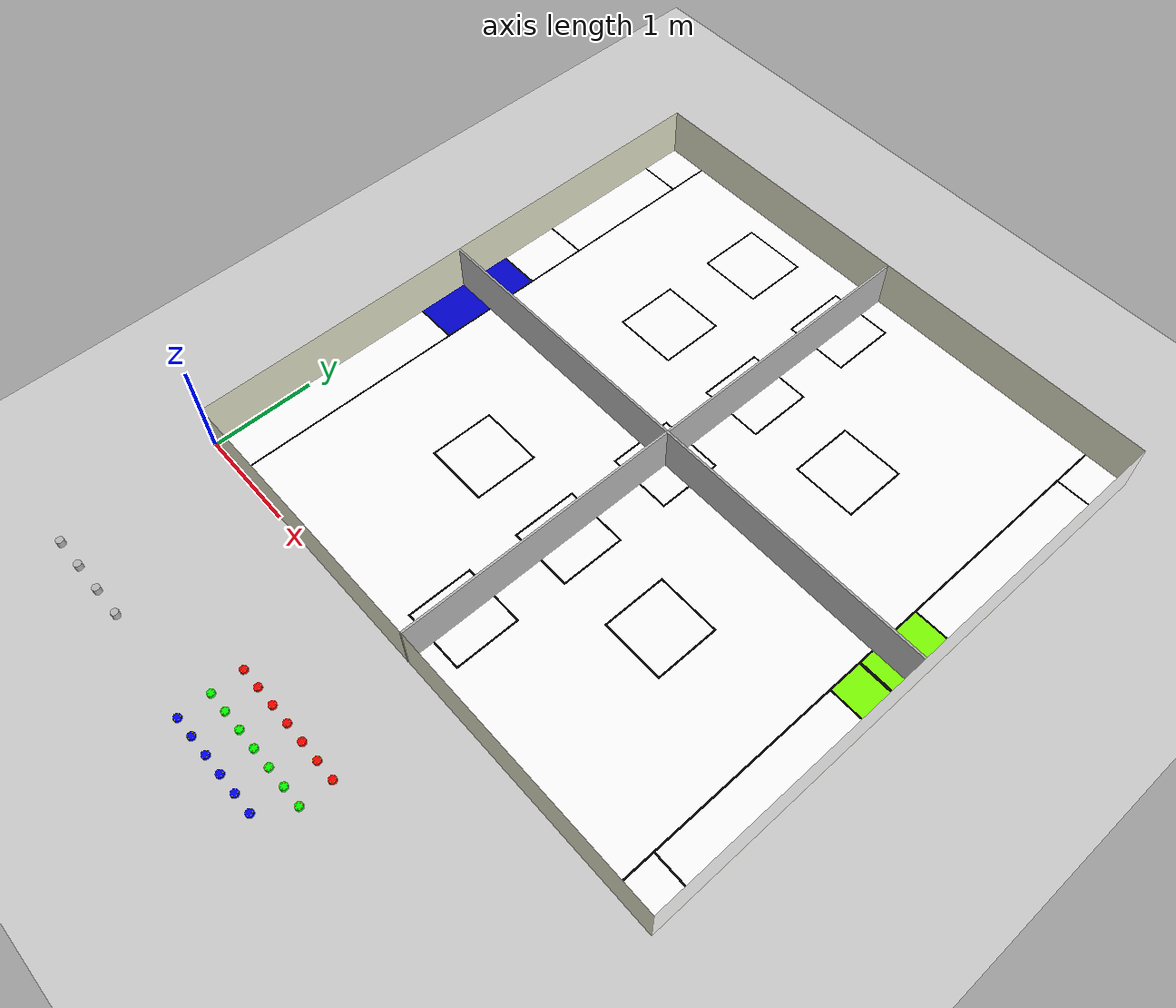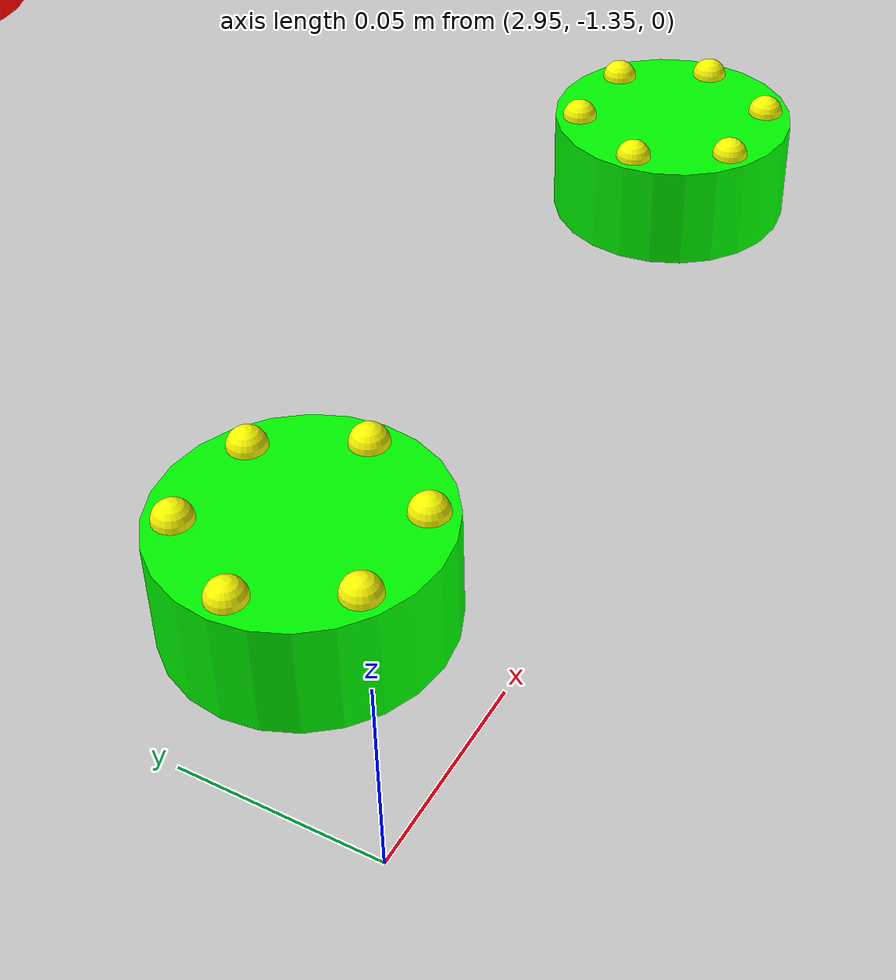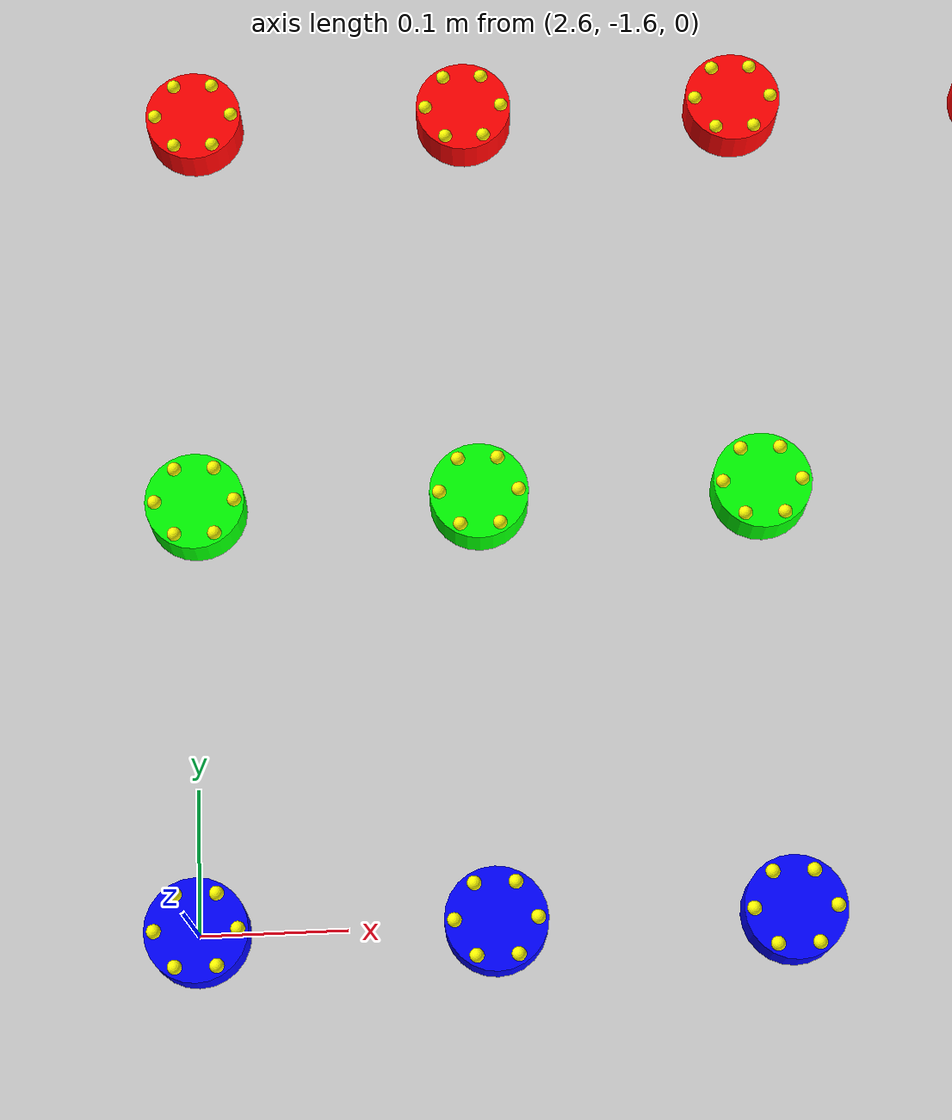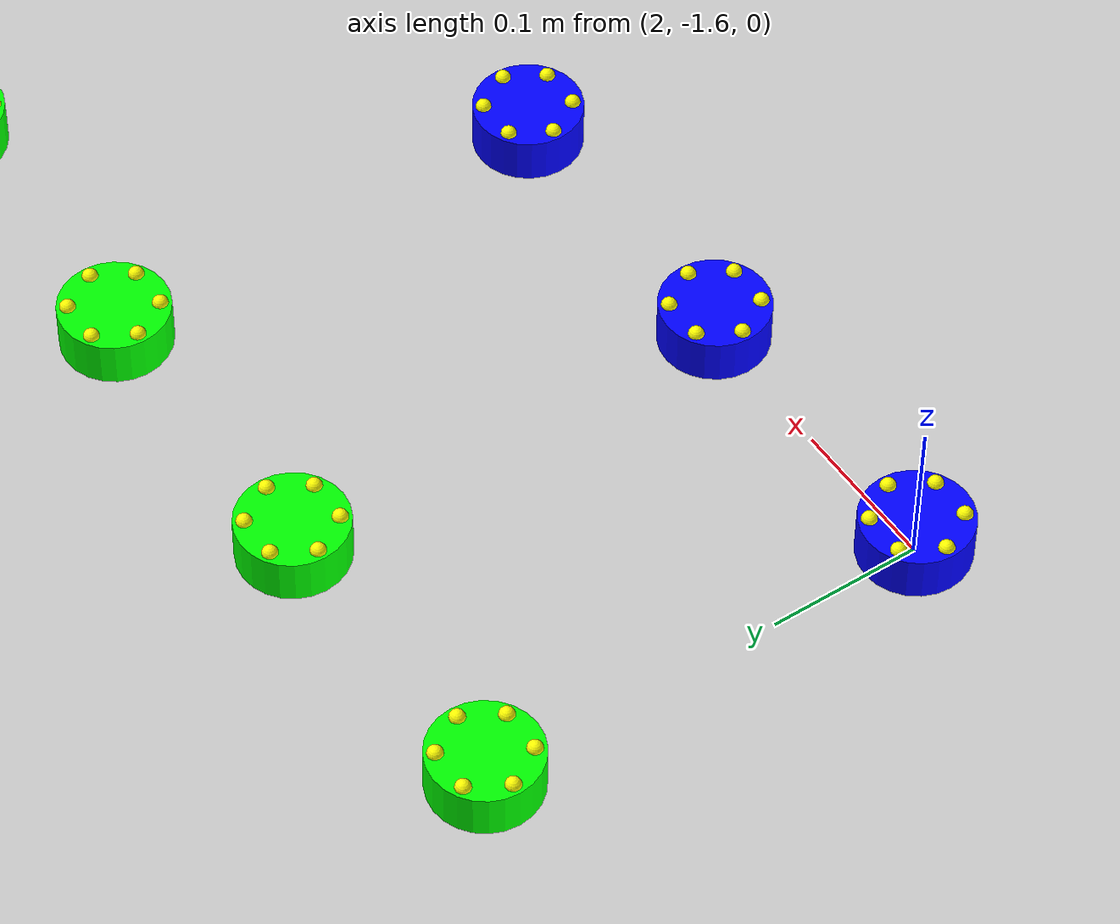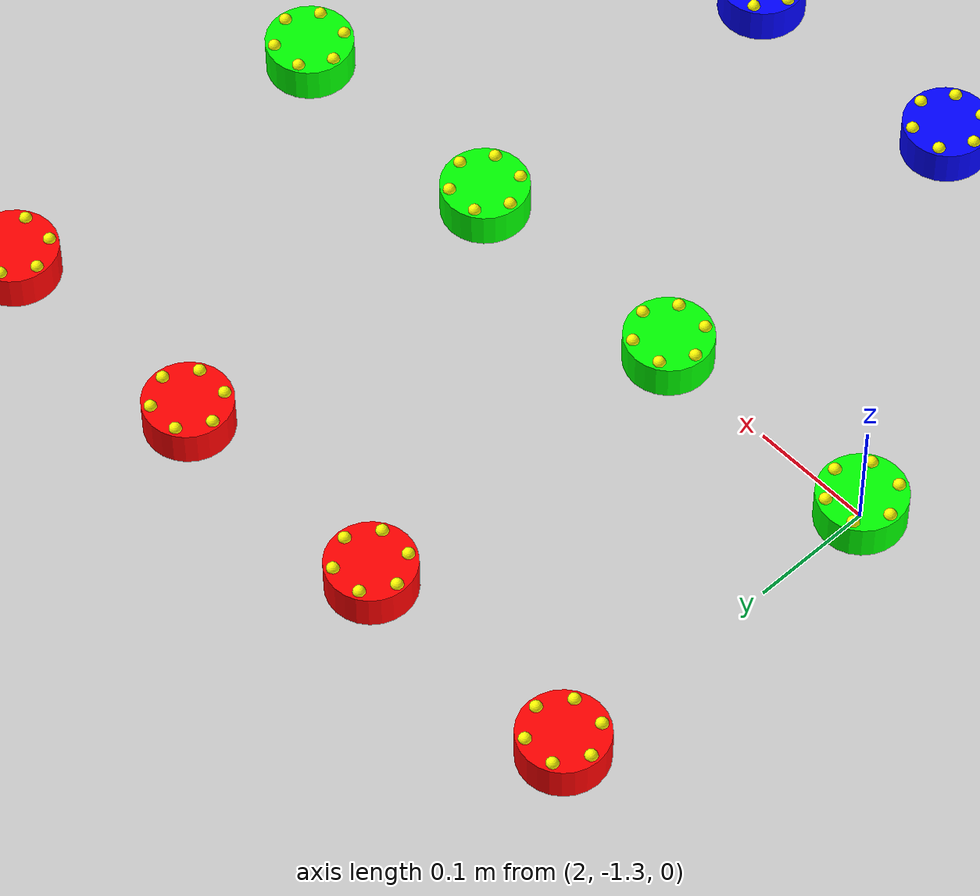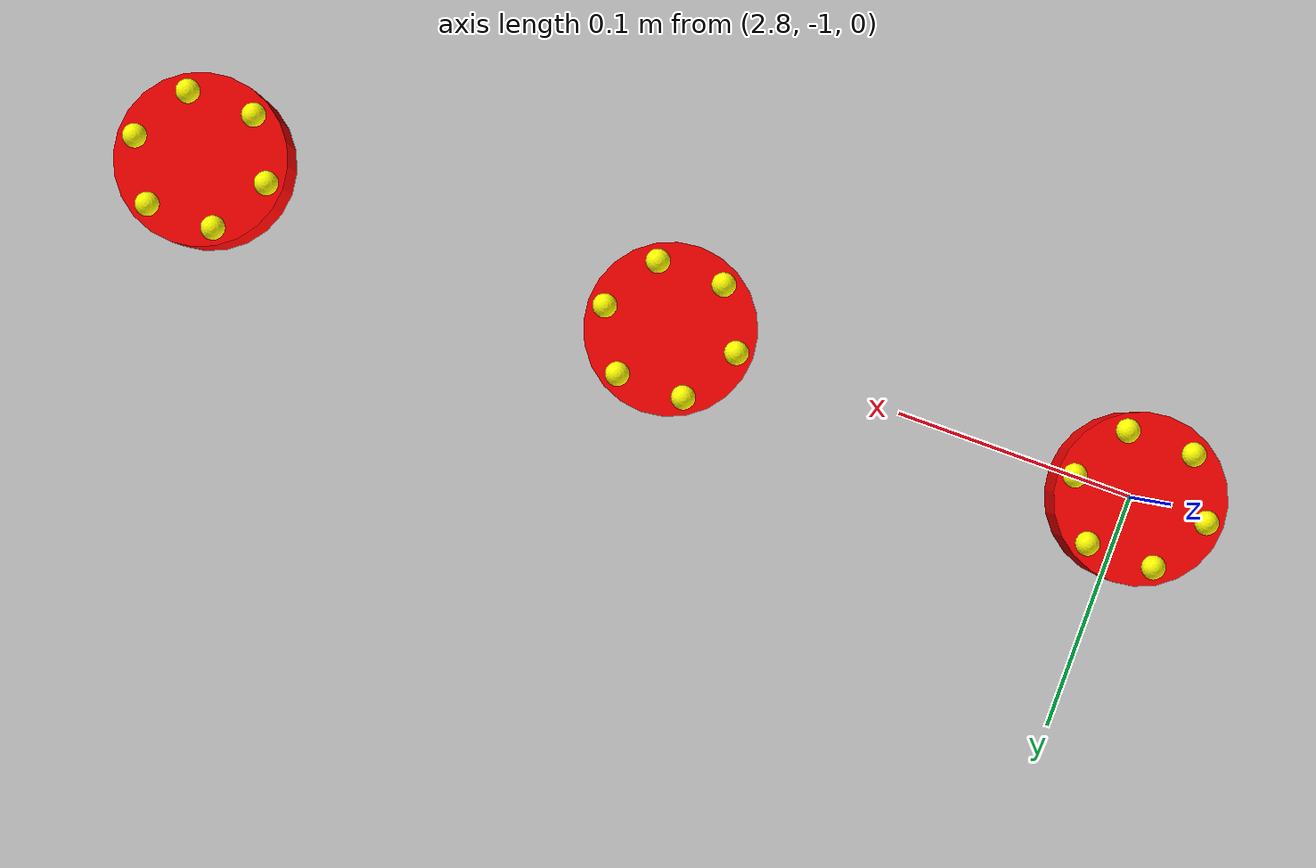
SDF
<sdf version="1.4">
 <world name="LLSF">
  <physics type="ode">
   <max_step_size>0.002</max_step_size>
   <real_time_factor>1</real_time_factor>
   <real_time_update_rate>500</real_time_update_rate>
  </physics>
  <include><uri>model://ground_plane</uri></include>
  <include><uri>model://sun</uri></include>
  <include><uri>model://field_quarters</uri></include>
  <include><name>Puck0</name><uri>model://puck_red</uri><pose>2 -1.0 0 0 0 0</pose></include>
  <include><name>Puck1</name><uri>model://puck_green</uri><pose>2 -1.3 0 0 0 0</pose></include>
  <include><name>Puck2</name><uri>model://puck_blue</uri><pose>2 -1.6 0 0 0 0</pose></include>
  <include><name>Puck3</name><uri>model://puck_red</uri><pose>2.2 -1.0 0 0 0 0</pose></include>
  <include><name>Puck4</name><uri>model://puck_green</uri><pose>2.2 -1.3 0 0 0 0</pose></include>
  <include><name>Puck5</name><uri>model://puck_blue</uri><pose>2.2 -1.6 0 0 0 0</pose></include>
  <include><name>Puck6</name><uri>model://puck_red</uri><pose>2.4 -1.0 0 0 0 0</pose></include>
  <include><name>Puck7</name><uri>model://puck_green</uri><pose>2.4 -1.3 0 0 0 0</pose></include>
  <include><name>Puck8</name><uri>model://puck_blue</uri><pose>2.4 -1.6 0 0 0 0</pose></include>
  <include><name>Puck9</name><uri>model://puck_red</uri><pose>2.6 -1.0 0 0 0 0</pose></include>
  <include><name>Puck10</name><uri>model://puck_green</uri><pose>2.6 -1.3 0 0 0 0</pose></include>
  <include><name>Puck11</name><uri>model://puck_blue</uri><pose>2.6 -1.6 0 0 0 0</pose></include>
  <include><name>Puck12</name><uri>model://puck_red</uri><pose>2.8 -1.0 0 0 0 0</pose></include>
  <include><name>Puck13</name><uri>model://puck_green</uri><pose>2.8 -1.3 0 0 0 0</pose></include>
  <include><name>Puck14</name><uri>model://puck_blue</uri><pose>2.8 -1.6 0 0 0 0</pose></include>
  <include><name>Puck15</name><uri>model://puck_red</uri><pose>3 -1.0 0 0 0 0</pose></include>
  <include><name>Puck16</name><uri>model://puck_green</uri><pose>3 -1.3 0 0 0 0</pose></include>
  <include><name>Puck17</name><uri>model://puck_blue</uri><pose>3 -1.6 0 0 0 0</pose></include>
  <include><name>Puck18</name><uri>model://puck_red</uri><pose>3.2 -1.0 0 0 0 0</pose></include>
  <include><name>Puck19</name><uri>model://puck_green</uri><pose>3.2 -1.3 0 0 0 0</pose></include>
  <include><name>Obstacle_beer0</name><uri>model://beer</uri><pose>0.0 -1.5 0 0 0 0</pose></include>
  <include><name>Obstacle_beer1</name><uri>model://beer</uri><pose>0.3 -1.5 0 0 0 0</pose></include>
  <include><name>Obstacle_beer2</name><uri>model://beer</uri><pose>0.6 -1.5 0 0 0 0</pose></include>
  <include><name>Obstacle_beer3</name><uri>model://beer</uri><pose>0.9 -1.5 0 0 0 0</pose></include>
  <plugin name="world" filename="libllsf_world.so"/>
 </world>
</sdf>

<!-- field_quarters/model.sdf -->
<sdf version="1.4">
  <model name="llsf_field">
    <static>true</static>
    <link name="field_link">
      <visual name='visual'>
	<pose>5.6 0 0 0 0 1.57</pose>
	<geometry>
	  <mesh>
	    <uri>model://llsf_field/RobotinoFeld_leer.dae</uri>
	    <scale>1.0 1.0 1.0</scale>
	  </mesh>
	</geometry>
	<cast_shadows>false</cast_shadows>
      </visual>
      <collision name="collision_ground">
	<pose>2.8 2.8 0.01 0 0 0 </pose>
        <geometry>
          <box>
            <size>5.6 5.6 0.02</size>
          </box>
        </geometry>
        <surface>
          <friction>
            <ode>
              <mu>100</mu>
              <mu2>50</mu2>
            </ode>
          </friction>
        </surface>
      </collision>
      <collision name="collision0">
        <pose>2.8 0 0.25 0 0 0 </pose>
	<geometry>
          <box>
            <size>5.6 0.02 0.5</size>
          </box>
        </geometry>
        <surface>
          <friction>
            <ode>
              <mu>100</mu>
              <mu2>50</mu2>
            </ode>
          </friction>
        </surface>
      </collision>
      <collision name="collision1">
        <pose>0 2.8 0.25 0 0 0 </pose>
	<geometry>
          <box>
            <size>0.02 5.6 0.5</size>
          </box>
        </geometry>
        <surface>
          <friction>
            <ode>
              <mu>100</mu>
              <mu2>50</mu2>
            </ode>
          </friction>
        </surface>
      </collision>
      <collision name="collision2">
        <pose>5.6 2.8 0.25 0 0 0 </pose>
	<geometry>
          <box>
            <size>0.02 5.6 0.5</size>
          </box>
        </geometry>
        <surface>
          <friction>
            <ode>
              <mu>100</mu>
              <mu2>50</mu2>
            </ode>
          </friction>
        </surface>
      </collision>
      <collision name="collision3">
        <pose>2.8 5.6 0.25 0 0 0 </pose>
	<geometry>
          <box>
            <size>5.6 0.02 0.5</size>
          </box>
        </geometry>
        <surface>
          <friction>
            <ode>
              <mu>100</mu>
              <mu2>50</mu2>
            </ode>
          </friction>
        </surface>
      </collision>

      <!-- Quater boundaries -->
      <collision name="split1">
        <pose>2.8 2.8 0.25 0 0 0 </pose>
	<geometry>
          <box>
            <size>5.6 0.02 0.5</size>
          </box>
        </geometry>
        <surface>
          <friction>
            <ode>
              <mu>100</mu>
              <mu2>50</mu2>
            </ode>
          </friction>
        </surface>
      </collision>
      <visual name="visual_split1">
        <pose>2.8 2.8 0.25 0 0 0 </pose>
	<geometry>
          <box>
            <size>5.6 0.02 0.5</size>
          </box>
        </geometry>
      </visual>
      <collision name="split2">
        <pose>2.8 2.8 0.25 0 0 0 </pose>
	<geometry>
          <box>
            <size>0.02 5.6 0.5</size>
          </box>
        </geometry>
        <surface>
          <friction>
            <ode>
              <mu>100</mu>
              <mu2>50</mu2>
            </ode>
          </friction>
        </surface>
      </collision>
      <visual name="visual_split2">
        <pose>2.8 2.8 0.25 0 0 0 </pose>
	<geometry>
          <box>
            <size>0.02 5.6 0.5</size>
          </box>
        </geometry>
      </visual>
    </link>
  </model>
</sdf>

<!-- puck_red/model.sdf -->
<sdf version="1.4">
  <model name="puck">
    <static>false</static>
    <link name="cylinder">
      <pose>0 0 0.015 0 0 0 </pose>
      <gravity>true</gravity>
      <inertial>
        <mass>50</mass>
      </inertial>
      <collision name="cylinder_collision">
        <geometry>
          <cylinder>
            <radius>0.0375</radius>
	    <length>0.03</length>
          </cylinder>
        </geometry>
	<surface>
	  <friction>
	    <ode>
	      <mu>1.0</mu>
              <mu2>1.0</mu2>
              <slip1>0.0</slip1>
              <slip2>0.0</slip2>
	    </ode>
	  </friction>
	</surface>
      </collision>
      <collision name="top_collision">
        <geometry>
          <box>
	    <size>0.053 0.053 0.03</size>
          </box>
        </geometry>
      </collision>
      <visual name="cylinder_visual">
        <cast_shadows>false</cast_shadows>
        <geometry>
          <cylinder>
            <radius>0.035</radius>
	    <length>0.03</length>
          </cylinder>
        </geometry>
	<material>
	  <!-- red -->
	  <ambient>1.0 0.0 0.0 1</ambient>
	  <diffuse>1.0 0.0 0.0 1</diffuse>
	</material>
      </visual>
      <visual name="noppel_up_0">
	<pose>0.028 0 0.015 0 0 0 </pose>
        <cast_shadows>false</cast_shadows>
        <geometry>
          <sphere>
            <radius>0.005</radius>
          </sphere>
        </geometry>
	<material>
	  <ambient>1.0 1.0 0.0 1</ambient>
	  <diffuse>1.0 1.0 0.0 1</diffuse>
	</material>
      </visual>
      <visual name="noppel_up_1">
	<pose>0.014 0.024 0.015 0 0 0 </pose>
        <cast_shadows>false</cast_shadows>
        <geometry>
          <sphere>
            <radius>0.005</radius>
          </sphere>
        </geometry>
	<material>
	  <ambient>1.0 1.0 0.0 1</ambient>
	  <diffuse>1.0 1.0 0.0 1</diffuse>
	</material>
      </visual>
      <visual name="noppel_up_2">
	<pose>-0.014 0.024 0.015 0 0 0 </pose>
        <cast_shadows>false</cast_shadows>
        <geometry>
          <sphere>
            <radius>0.005</radius>
          </sphere>
        </geometry>
	<material>
	  <ambient>1.0 1.0 0.0 1</ambient>
	  <diffuse>1.0 1.0 0.0 1</diffuse>
	</material>
      </visual>
      <visual name="noppel_up_3">
	<pose>-0.028 0 0.015 0 0 0 </pose>
        <cast_shadows>false</cast_shadows>
        <geometry>
          <sphere>
            <radius>0.005</radius>
          </sphere>
        </geometry>
	<material>
	  <ambient>1.0 1.0 0.0 1</ambient>
	  <diffuse>1.0 1.0 0.0 1</diffuse>
	</material>
      </visual>
      <visual name="noppel_up_4">
	<pose>-0.014 -0.024 0.015 0 0 0 </pose>
        <cast_shadows>false</cast_shadows>
        <geometry>
          <sphere>
            <radius>0.005</radius>
          </sphere>
        </geometry>
	<material>
	  <ambient>1.0 1.0 0.0 1</ambient>
	  <diffuse>1.0 1.0 0.0 1</diffuse>
	</material>
      </visual>
      <visual name="noppel_up_5">
	<pose>0.014 -0.024 0.015 0 0 0 </pose>
        <cast_shadows>false</cast_shadows>
        <geometry>
          <sphere>
            <radius>0.005</radius>
          </sphere>
        </geometry>
	<material>
	  <ambient>1.0 1.0 0.0 1</ambient>
	  <diffuse>1.0 1.0 0.0 1</diffuse>
	</material>
      </visual>
      <visual name="noppel_down_0">
	<pose>0.028 0 -0.015 0 0 0 </pose>
        <cast_shadows>false</cast_shadows>
        <geometry>
          <sphere>
            <radius>0.005</radius>
          </sphere>
        </geometry>
	<material>
	  <ambient>1.0 1.0 0.0 1</ambient>
	  <diffuse>1.0 1.0 0.0 1</diffuse>
	</material>
      </visual>
      <visual name="noppel_down_1">
	<pose>0.014 0.024 -0.015 0 0 0 </pose>
        <cast_shadows>false</cast_shadows>
        <geometry>
          <sphere>
            <radius>0.005</radius>
          </sphere>
        </geometry>
	<material>
	  <ambient>1.0 1.0 0.0 1</ambient>
	  <diffuse>1.0 1.0 0.0 1</diffuse>
	</material>
      </visual>
      <visual name="noppel_down_2">
	<pose>-0.014 0.024 -0.015 0 0 0 </pose>
        <cast_shadows>false</cast_shadows>
        <geometry>
          <sphere>
            <radius>0.005</radius>
          </sphere>
        </geometry>
	<material>
	  <ambient>1.0 1.0 0.0 1</ambient>
	  <diffuse>1.0 1.0 0.0 1</diffuse>
	</material>
      </visual>
      <visual name="noppel_down_3">
	<pose>-0.028 0 -0.015 0 0 0 </pose>
        <cast_shadows>false</cast_shadows>
        <geometry>
          <sphere>
            <radius>0.005</radius>
          </sphere>
        </geometry>
	<material>
	  <ambient>1.0 1.0 0.0 1</ambient>
	  <diffuse>1.0 1.0 0.0 1</diffuse>
	</material>
      </visual>
      <visual name="noppel_down_4">
	<pose>-0.014 -0.024 -0.015 0 0 0 </pose>
        <cast_shadows>false</cast_shadows>
        <geometry>
          <sphere>
            <radius>0.005</radius>
          </sphere>
        </geometry>
	<material>
	  <ambient>1.0 1.0 0.0 1</ambient>
	  <diffuse>1.0 1.0 0.0 1</diffuse>
	</material>
      </visual>
      <visual name="noppel_down_5">
	<pose>0.014 -0.024 -0.015 0 0 0 </pose>
        <cast_shadows>false</cast_shadows>
        <geometry>
          <sphere>
            <radius>0.005</radius>
          </sphere>
        </geometry>
	<material>
	  <ambient>1.0 1.0 0.0 1</ambient>
	  <diffuse>1.0 1.0 0.0 1</diffuse>
	</material>
      </visual>
    </link>
  </model>
</sdf>

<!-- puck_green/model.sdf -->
<sdf version="1.4">
  <model name="puck">
    <static>false</static>
    <link name="cylinder">
      <pose>0 0 0.015 0 0 0 </pose>
      <gravity>true</gravity>
      <inertial>
        <mass>50</mass>
      </inertial>
      <collision name="cylinder_collision">
        <geometry>
          <cylinder>
            <radius>0.0375</radius>
	    <length>0.03</length>
          </cylinder>
        </geometry>
	<surface>
	  <friction>
	    <ode>
	      <mu>1.0</mu>
              <mu2>1.0</mu2>
              <slip1>0.0</slip1>
              <slip2>0.0</slip2>
	    </ode>
	  </friction>
	</surface>
      </collision>
      <collision name="top_collision">
        <geometry>
          <box>
	    <size>0.053 0.053 0.03</size>
          </box>
        </geometry>
      </collision>
      <visual name="cylinder_visual">
        <cast_shadows>false</cast_shadows>
        <geometry>
          <cylinder>
            <radius>0.035</radius>
	    <length>0.03</length>
          </cylinder>
        </geometry>
	<material>
	  <!-- green -->
	  <ambient>0.0 1.0 0.0 1</ambient>
	  <diffuse>0.0 1.0 0.0 1</diffuse>
	</material>
      </visual>
      <visual name="noppel_up_0">
	<pose>0.028 0 0.015 0 0 0 </pose>
        <cast_shadows>false</cast_shadows>
        <geometry>
          <sphere>
            <radius>0.005</radius>
          </sphere>
        </geometry>
	<material>
	  <ambient>1.0 1.0 0.0 1</ambient>
	  <diffuse>1.0 1.0 0.0 1</diffuse>
	</material>
      </visual>
      <visual name="noppel_up_1">
	<pose>0.014 0.024 0.015 0 0 0 </pose>
        <cast_shadows>false</cast_shadows>
        <geometry>
          <sphere>
            <radius>0.005</radius>
          </sphere>
        </geometry>
	<material>
	  <ambient>1.0 1.0 0.0 1</ambient>
	  <diffuse>1.0 1.0 0.0 1</diffuse>
	</material>
      </visual>
      <visual name="noppel_up_2">
	<pose>-0.014 0.024 0.015 0 0 0 </pose>
        <cast_shadows>false</cast_shadows>
        <geometry>
          <sphere>
            <radius>0.005</radius>
          </sphere>
        </geometry>
	<material>
	  <ambient>1.0 1.0 0.0 1</ambient>
	  <diffuse>1.0 1.0 0.0 1</diffuse>
	</material>
      </visual>
      <visual name="noppel_up_3">
	<pose>-0.028 0 0.015 0 0 0 </pose>
        <cast_shadows>false</cast_shadows>
        <geometry>
          <sphere>
            <radius>0.005</radius>
          </sphere>
        </geometry>
	<material>
	  <ambient>1.0 1.0 0.0 1</ambient>
	  <diffuse>1.0 1.0 0.0 1</diffuse>
	</material>
      </visual>
      <visual name="noppel_up_4">
	<pose>-0.014 -0.024 0.015 0 0 0 </pose>
        <cast_shadows>false</cast_shadows>
        <geometry>
          <sphere>
            <radius>0.005</radius>
          </sphere>
        </geometry>
	<material>
	  <ambient>1.0 1.0 0.0 1</ambient>
	  <diffuse>1.0 1.0 0.0 1</diffuse>
	</material>
      </visual>
      <visual name="noppel_up_5">
	<pose>0.014 -0.024 0.015 0 0 0 </pose>
        <cast_shadows>false</cast_shadows>
        <geometry>
          <sphere>
            <radius>0.005</radius>
          </sphere>
        </geometry>
	<material>
	  <ambient>1.0 1.0 0.0 1</ambient>
	  <diffuse>1.0 1.0 0.0 1</diffuse>
	</material>
      </visual>
      <visual name="noppel_down_0">
	<pose>0.028 0 -0.015 0 0 0 </pose>
        <cast_shadows>false</cast_shadows>
        <geometry>
          <sphere>
            <radius>0.005</radius>
          </sphere>
        </geometry>
	<material>
	  <ambient>1.0 1.0 0.0 1</ambient>
	  <diffuse>1.0 1.0 0.0 1</diffuse>
	</material>
      </visual>
      <visual name="noppel_down_1">
	<pose>0.014 0.024 -0.015 0 0 0 </pose>
        <cast_shadows>false</cast_shadows>
        <geometry>
          <sphere>
            <radius>0.005</radius>
          </sphere>
        </geometry>
	<material>
	  <ambient>1.0 1.0 0.0 1</ambient>
	  <diffuse>1.0 1.0 0.0 1</diffuse>
	</material>
      </visual>
      <visual name="noppel_down_2">
	<pose>-0.014 0.024 -0.015 0 0 0 </pose>
        <cast_shadows>false</cast_shadows>
        <geometry>
          <sphere>
            <radius>0.005</radius>
          </sphere>
        </geometry>
	<material>
	  <ambient>1.0 1.0 0.0 1</ambient>
	  <diffuse>1.0 1.0 0.0 1</diffuse>
	</material>
      </visual>
      <visual name="noppel_down_3">
	<pose>-0.028 0 -0.015 0 0 0 </pose>
        <cast_shadows>false</cast_shadows>
        <geometry>
          <sphere>
            <radius>0.005</radius>
          </sphere>
        </geometry>
	<material>
	  <ambient>1.0 1.0 0.0 1</ambient>
	  <diffuse>1.0 1.0 0.0 1</diffuse>
	</material>
      </visual>
      <visual name="noppel_down_4">
	<pose>-0.014 -0.024 -0.015 0 0 0 </pose>
        <cast_shadows>false</cast_shadows>
        <geometry>
          <sphere>
            <radius>0.005</radius>
          </sphere>
        </geometry>
	<material>
	  <ambient>1.0 1.0 0.0 1</ambient>
	  <diffuse>1.0 1.0 0.0 1</diffuse>
	</material>
      </visual>
      <visual name="noppel_down_5">
	<pose>0.014 -0.024 -0.015 0 0 0 </pose>
        <cast_shadows>false</cast_shadows>
        <geometry>
          <sphere>
            <radius>0.005</radius>
          </sphere>
        </geometry>
	<material>
	  <ambient>1.0 1.0 0.0 1</ambient>
	  <diffuse>1.0 1.0 0.0 1</diffuse>
	</material>
      </visual>
    </link>
  </model>
</sdf>

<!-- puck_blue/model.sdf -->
<sdf version="1.4">
  <model name="puck">
    <static>false</static>
    <link name="cylinder">
      <pose>0 0 0.015 0 0 0 </pose>
      <gravity>true</gravity>
      <inertial>
        <mass>50</mass>
      </inertial>
      <collision name="cylinder_collision">
        <geometry>
          <cylinder>
            <radius>0.0375</radius>
	    <length>0.03</length>
          </cylinder>
        </geometry>
	<surface>
	  <friction>
	    <ode>
	      <mu>1.0</mu>
              <mu2>1.0</mu2>
              <slip1>0.0</slip1>
              <slip2>0.0</slip2>
	    </ode>
	  </friction>
	</surface>
      </collision>
      <collision name="top_collision">
        <geometry>
          <box>
	    <size>0.053 0.053 0.03</size>
          </box>
        </geometry>
      </collision>
      <visual name="cylinder_visual">
        <cast_shadows>false</cast_shadows>
        <geometry>
          <cylinder>
            <radius>0.035</radius>
	    <length>0.03</length>
          </cylinder>
        </geometry>
	<material>
	  <!-- blue -->
	  <ambient>0.0 0.0 1.0 1</ambient>
	  <diffuse>0.0 0.0 1.0 1</diffuse>
	</material>
      </visual>
      <visual name="noppel_up_0">
	<pose>0.028 0 0.015 0 0 0 </pose>
        <cast_shadows>false</cast_shadows>
        <geometry>
          <sphere>
            <radius>0.005</radius>
          </sphere>
        </geometry>
	<material>
	  <ambient>1.0 1.0 0.0 1</ambient>
	  <diffuse>1.0 1.0 0.0 1</diffuse>
	</material>
      </visual>
      <visual name="noppel_up_1">
	<pose>0.014 0.024 0.015 0 0 0 </pose>
        <cast_shadows>false</cast_shadows>
        <geometry>
          <sphere>
            <radius>0.005</radius>
          </sphere>
        </geometry>
	<material>
	  <ambient>1.0 1.0 0.0 1</ambient>
	  <diffuse>1.0 1.0 0.0 1</diffuse>
	</material>
      </visual>
      <visual name="noppel_up_2">
	<pose>-0.014 0.024 0.015 0 0 0 </pose>
        <cast_shadows>false</cast_shadows>
        <geometry>
          <sphere>
            <radius>0.005</radius>
          </sphere>
        </geometry>
	<material>
	  <ambient>1.0 1.0 0.0 1</ambient>
	  <diffuse>1.0 1.0 0.0 1</diffuse>
	</material>
      </visual>
      <visual name="noppel_up_3">
	<pose>-0.028 0 0.015 0 0 0 </pose>
        <cast_shadows>false</cast_shadows>
        <geometry>
          <sphere>
            <radius>0.005</radius>
          </sphere>
        </geometry>
	<material>
	  <ambient>1.0 1.0 0.0 1</ambient>
	  <diffuse>1.0 1.0 0.0 1</diffuse>
	</material>
      </visual>
      <visual name="noppel_up_4">
	<pose>-0.014 -0.024 0.015 0 0 0 </pose>
        <cast_shadows>false</cast_shadows>
        <geometry>
          <sphere>
            <radius>0.005</radius>
          </sphere>
        </geometry>
	<material>
	  <ambient>1.0 1.0 0.0 1</ambient>
	  <diffuse>1.0 1.0 0.0 1</diffuse>
	</material>
      </visual>
      <visual name="noppel_up_5">
	<pose>0.014 -0.024 0.015 0 0 0 </pose>
        <cast_shadows>false</cast_shadows>
        <geometry>
          <sphere>
            <radius>0.005</radius>
          </sphere>
        </geometry>
	<material>
	  <ambient>1.0 1.0 0.0 1</ambient>
	  <diffuse>1.0 1.0 0.0 1</diffuse>
	</material>
      </visual>
      <visual name="noppel_down_0">
	<pose>0.028 0 -0.015 0 0 0 </pose>
        <cast_shadows>false</cast_shadows>
        <geometry>
          <sphere>
            <radius>0.005</radius>
          </sphere>
        </geometry>
	<material>
	  <ambient>1.0 1.0 0.0 1</ambient>
	  <diffuse>1.0 1.0 0.0 1</diffuse>
	</material>
      </visual>
      <visual name="noppel_down_1">
	<pose>0.014 0.024 -0.015 0 0 0 </pose>
        <cast_shadows>false</cast_shadows>
        <geometry>
          <sphere>
            <radius>0.005</radius>
          </sphere>
        </geometry>
	<material>
	  <ambient>1.0 1.0 0.0 1</ambient>
	  <diffuse>1.0 1.0 0.0 1</diffuse>
	</material>
      </visual>
      <visual name="noppel_down_2">
	<pose>-0.014 0.024 -0.015 0 0 0 </pose>
        <cast_shadows>false</cast_shadows>
        <geometry>
          <sphere>
            <radius>0.005</radius>
          </sphere>
        </geometry>
	<material>
	  <ambient>1.0 1.0 0.0 1</ambient>
	  <diffuse>1.0 1.0 0.0 1</diffuse>
	</material>
      </visual>
      <visual name="noppel_down_3">
	<pose>-0.028 0 -0.015 0 0 0 </pose>
        <cast_shadows>false</cast_shadows>
        <geometry>
          <sphere>
            <radius>0.005</radius>
          </sphere>
        </geometry>
	<material>
	  <ambient>1.0 1.0 0.0 1</ambient>
	  <diffuse>1.0 1.0 0.0 1</diffuse>
	</material>
      </visual>
      <visual name="noppel_down_4">
	<pose>-0.014 -0.024 -0.015 0 0 0 </pose>
        <cast_shadows>false</cast_shadows>
        <geometry>
          <sphere>
            <radius>0.005</radius>
          </sphere>
        </geometry>
	<material>
	  <ambient>1.0 1.0 0.0 1</ambient>
	  <diffuse>1.0 1.0 0.0 1</diffuse>
	</material>
      </visual>
      <visual name="noppel_down_5">
	<pose>0.014 -0.024 -0.015 0 0 0 </pose>
        <cast_shadows>false</cast_shadows>
        <geometry>
          <sphere>
            <radius>0.005</radius>
          </sphere>
        </geometry>
	<material>
	  <ambient>1.0 1.0 0.0 1</ambient>
	  <diffuse>1.0 1.0 0.0 1</diffuse>
	</material>
      </visual>
    </link>
  </model>
</sdf>

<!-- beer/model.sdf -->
<sdf version='1.4'>
  <model name="beer">
    <link name='link'>
      <pose>0 0 0 0 0 0</pose>
      <inertial>
        <mass>0.390</mass>
        <inertia>
          <ixx>0.00058</ixx>
          <ixy>0</ixy>
          <ixz>0</ixz>
          <iyy>0.00058</iyy>
          <iyz>0</iyz>
          <izz>0.00025</izz>
        </inertia>
      </inertial>
      <collision name='collision'>
        <geometry>
          <cylinder>
            <radius>0.03500</radius>
            <length>0.12000</length>
          </cylinder>
        </geometry>
      </collision>

      <visual name='visual'>
        <geometry>
          <cylinder>
            <radius>0.03500</radius>
            <length>0.12000</length>
          </cylinder>
        </geometry>

        <material>
          <script>
            <uri>model://beer/materials/scripts</uri>
            <uri>model://beer/materials/textures</uri>
            <name>Beer/Diffuse</name>
          </script>
        </material>
      </visual>
    </link>
  </model>
</sdf>
